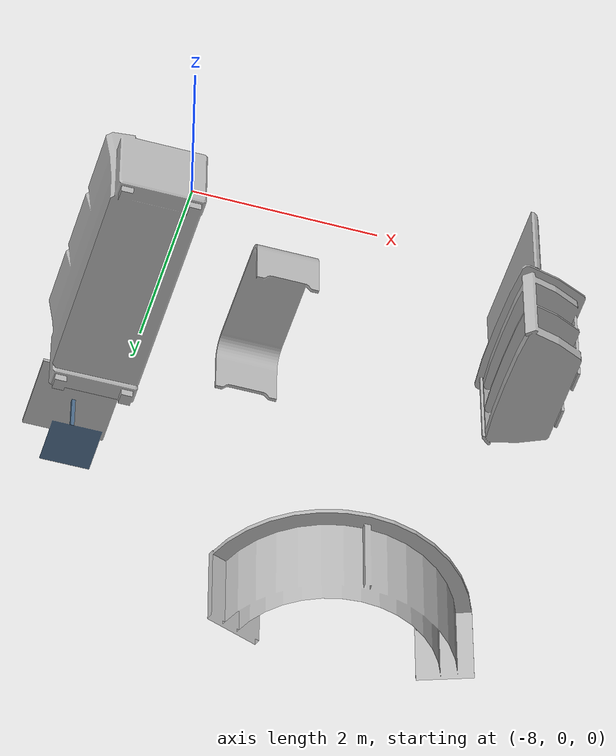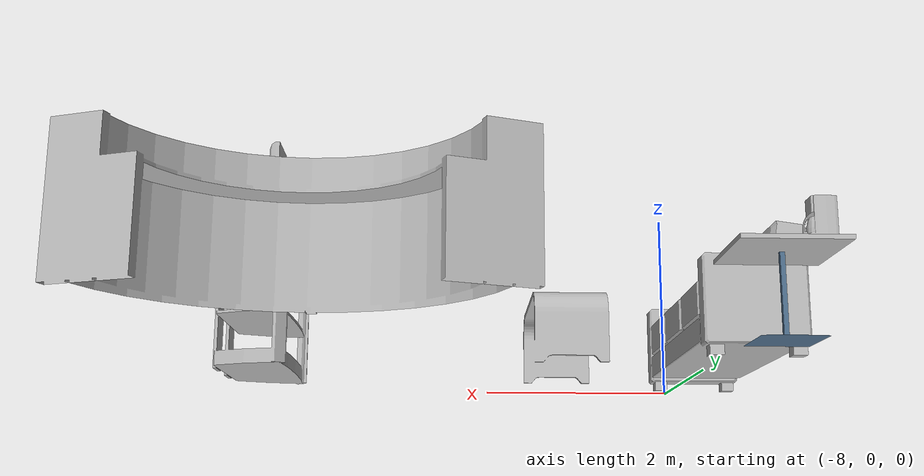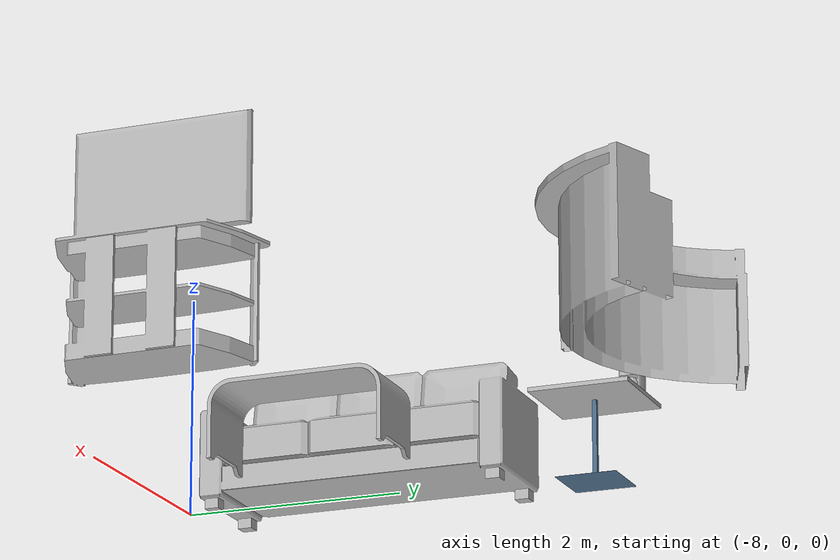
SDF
<?xml version='1.0'?>
<sdf version='1.6'>
  <model name='reception'>
    <link name='coffee_maker::link'>
      <pose frame=''>-8.56746 3.97225 0.77 0 -0 1.5708</pose>
      <self_collide>0</self_collide>
      <enable_wind>0</enable_wind>
      <kinematic>0</kinematic>
      <visual name='visual'>
        <geometry>
          <mesh>
            <uri>model://coffee_maker/meshes/coffee_maker.obj</uri>
            <scale>0.01 0.01 0.01</scale>
          </mesh>
        </geometry>
        <material>
          <shader type='pixel'/>
        </material>
        <pose frame=''>0 0 0 0 -0 0</pose>
        <transparency>0</transparency>
        <cast_shadows>1</cast_shadows>
      </visual>
    </link>
    <link name='couch_1::link'>
      <pose frame=''>-7.9 1.6 0 0 -0 1.5708</pose>
      <self_collide>0</self_collide>
      <enable_wind>0</enable_wind>
      <kinematic>0</kinematic>
      <visual name='visual'>
        <geometry>
          <mesh>
            <uri>model://office_couch/meshes/office_couch.dae</uri>
            <scale>1.4 1.4 1.4</scale>
          </mesh>
        </geometry>
        <material>
          <shader type='pixel'/>
        </material>
        <pose frame=''>0 0 0 0 -0 0</pose>
        <transparency>0</transparency>
        <cast_shadows>1</cast_shadows>
      </visual>
      <collision name='collision'>
        <laser_retro>0</laser_retro>
        <max_contacts>10</max_contacts>
        <pose frame=''>0.000893 0.384169 0.704321 0 -0 0</pose>
        <geometry>
          <box>
            <size>2.91435 0.976328 1.41768</size>
          </box>
        </geometry>
        <surface>
          <friction>
            <ode>
              <mu>1</mu>
              <mu2>1</mu2>
              <fdir1>0 0 0</fdir1>
              <slip1>0</slip1>
              <slip2>0</slip2>
            </ode>
            <torsional>
              <coefficient>1</coefficient>
              <patch_radius>0</patch_radius>
              <surface_radius>0</surface_radius>
              <use_patch_radius>1</use_patch_radius>
              <ode>
                <slip>0</slip>
              </ode>
            </torsional>
          </friction>
          <bounce>
            <restitution_coefficient>0</restitution_coefficient>
            <threshold>1e+06</threshold>
          </bounce>
          <contact>
            <collide_without_contact>0</collide_without_contact>
            <collide_without_contact_bitmask>1</collide_without_contact_bitmask>
            <collide_bitmask>1</collide_bitmask>
            <ode>
              <soft_cfm>0</soft_cfm>
              <soft_erp>0.2</soft_erp>
              <kp>1e+13</kp>
              <kd>1</kd>
              <max_vel>0.01</max_vel>
              <min_depth>0</min_depth>
            </ode>
            <bullet>
              <split_impulse>1</split_impulse>
              <split_impulse_penetration_threshold>-0.01</split_impulse_penetration_threshold>
              <soft_cfm>0</soft_cfm>
              <soft_erp>0.2</soft_erp>
              <kp>1e+13</kp>
              <kd>1</kd>
            </bullet>
          </contact>
        </surface>
      </collision>
    </link>
    <link name='reception_desk::link'>
      <pose frame=''>-4.60906 6.27039 0 0 -0 0</pose>
      <self_collide>0</self_collide>
      <enable_wind>0</enable_wind>
      <kinematic>0</kinematic>
      <gravity>1</gravity>
      <inertial>
        <mass>1</mass>
        <pose frame=''>0 0 0 0 -0 0</pose>
        <inertia>
          <ixx>1</ixx>
          <ixy>0</ixy>
          <ixz>0</ixz>
          <iyy>1</iyy>
          <iyz>0</iyz>
          <izz>1</izz>
        </inertia>
      </inertial>
      <visual name='visual'>
        <geometry>
          <mesh>
            <uri>model://reception_desk/meshes/reception_desk.obj</uri>
            <scale>0.01 0.01 0.01</scale>
          </mesh>
        </geometry>
        <material>
          <shader type='pixel'>
            <normal_map>__default__</normal_map>
          </shader>
        </material>
        <pose frame=''>0 0 0 0 -0 0</pose>
        <transparency>0</transparency>
        <cast_shadows>1</cast_shadows>
      </visual>
      <collision name='collision'>
        <laser_retro>0</laser_retro>
        <max_contacts>10</max_contacts>
        <pose frame=''>0 0 0 0 -0 0</pose>
        <geometry>
          <mesh>
            <uri>model://reception_desk/meshes/reception_desk.obj</uri>
            <scale>0.01 0.01 0.01</scale>
          </mesh>
        </geometry>
        <surface>
          <friction>
            <ode>
              <mu>1</mu>
              <mu2>1</mu2>
              <fdir1>0 0 0</fdir1>
              <slip1>0</slip1>
              <slip2>0</slip2>
            </ode>
            <torsional>
              <coefficient>1</coefficient>
              <patch_radius>0</patch_radius>
              <surface_radius>0</surface_radius>
              <use_patch_radius>1</use_patch_radius>
              <ode>
                <slip>0</slip>
              </ode>
            </torsional>
          </friction>
          <bounce>
            <restitution_coefficient>0</restitution_coefficient>
            <threshold>1e+06</threshold>
          </bounce>
          <contact>
            <collide_without_contact>0</collide_without_contact>
            <collide_without_contact_bitmask>1</collide_without_contact_bitmask>
            <collide_bitmask>1</collide_bitmask>
            <ode>
              <soft_cfm>0</soft_cfm>
              <soft_erp>0.2</soft_erp>
              <kp>1e+13</kp>
              <kd>1</kd>
              <max_vel>0.01</max_vel>
              <min_depth>0</min_depth>
            </ode>
            <bullet>
              <split_impulse>1</split_impulse>
              <split_impulse_penetration_threshold>-0.01</split_impulse_penetration_threshold>
              <soft_cfm>0</soft_cfm>
              <soft_erp>0.2</soft_erp>
              <kp>1e+13</kp>
              <kd>1</kd>
            </bullet>
          </contact>
        </surface>
      </collision>
    </link>
    <model name='desk'>
      <static>1</static>
      <link name='link'>
        <visual name='visual'>
          <geometry>
            <mesh>
              <uri>model://desk/meshes/desk.obj</uri>
              <scale>0.001 0.001 0.001</scale>
            </mesh>
          </geometry>
        </visual>
      </link>
      <pose frame=''>-6.69552 1.68763 0 0 0 -1.57118</pose>
    </model>
    <model name='office_cafe_table'>
      <static>1</static>
      <link name='link'>
        <collision name='surface'>
          <pose frame=''>0 0 0.755 0 -0 0</pose>
          <geometry>
            <box>
              <size>0.913 0.913 0.04</size>
            </box>
          </geometry>
        </collision>
        <collision name='column'>
          <pose frame=''>0 0 0.37 0 -0 0</pose>
          <geometry>
            <box>
              <size>0.042 0.042 0.74</size>
            </box>
          </geometry>
        </collision>
        <collision name='base'>
          <pose frame=''>0 0 0.02 0 -0 0</pose>
          <geometry>
            <box>
              <size>0.56 0.56 0.04</size>
            </box>
          </geometry>
        </collision>
        <visual name='visual'>
          <geometry>
            <mesh>
              <uri>model://office_cafe_table/meshes/office_cafe_table.dae</uri>
            </mesh>
          </geometry>
        </visual>
      </link>
      <pose frame=''>-8.29553 3.71618 0 0 -0 0</pose>
    </model>
    <model name='tv_stand'>
      <static>1</static>
      <link name='link'>
        <collision name='collision'>
          <pose frame=''>0.00123 -0.018095 1.05314 0 -0 0</pose>
          <geometry>
            <box>
              <size>1.80204 0.803547 2.11292</size>
            </box>
          </geometry>
          <max_contacts>10</max_contacts>
          <surface>
            <contact>
              <ode/>
            </contact>
            <bounce/>
            <friction>
              <torsional>
                <ode/>
              </torsional>
              <ode/>
            </friction>
          </surface>
        </collision>
        <visual name='visual'>
          <geometry>
            <mesh>
              <uri>model://tv_stand/meshes/tv_stand.dae</uri>
              <scale>1.4 1.4 1.4</scale>
            </mesh>
          </geometry>
        </visual>
        <self_collide>0</self_collide>
        <enable_wind>0</enable_wind>
        <kinematic>0</kinematic>
      </link>
      <pose frame=''>-3.71452 1.56706 0 0 0 -1.57691</pose>
    </model>
    <static>1</static>
    <allow_auto_disable>1</allow_auto_disable>
  </model>
</sdf>
